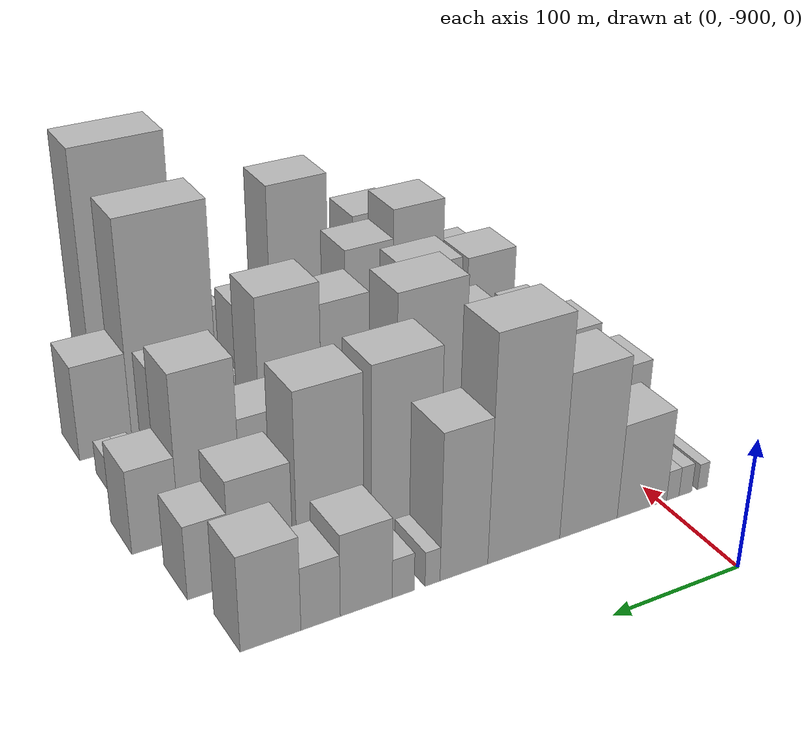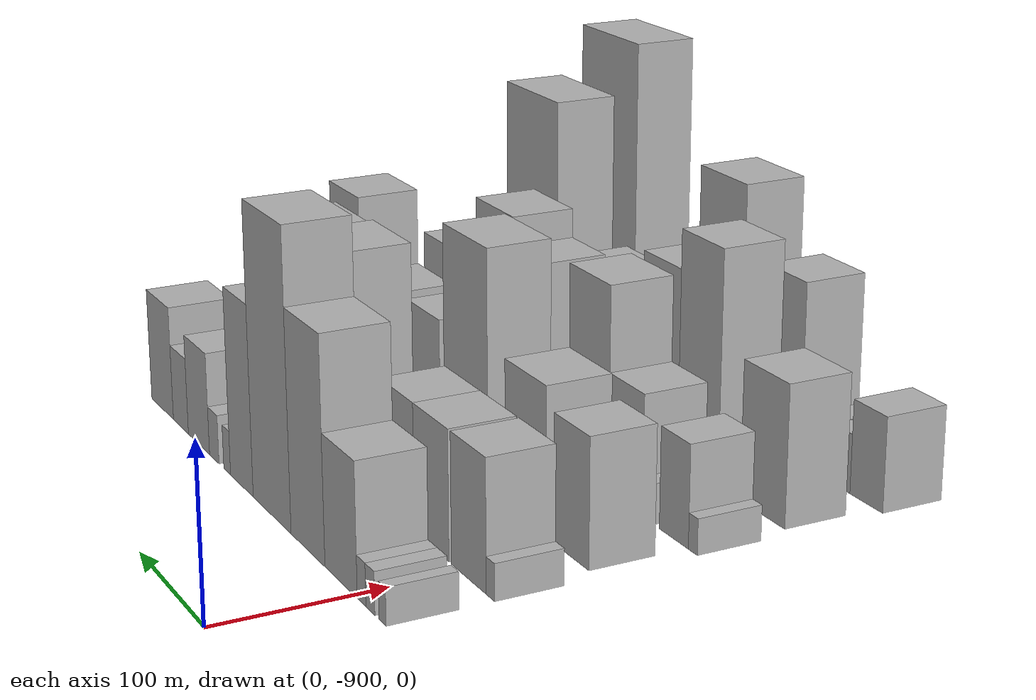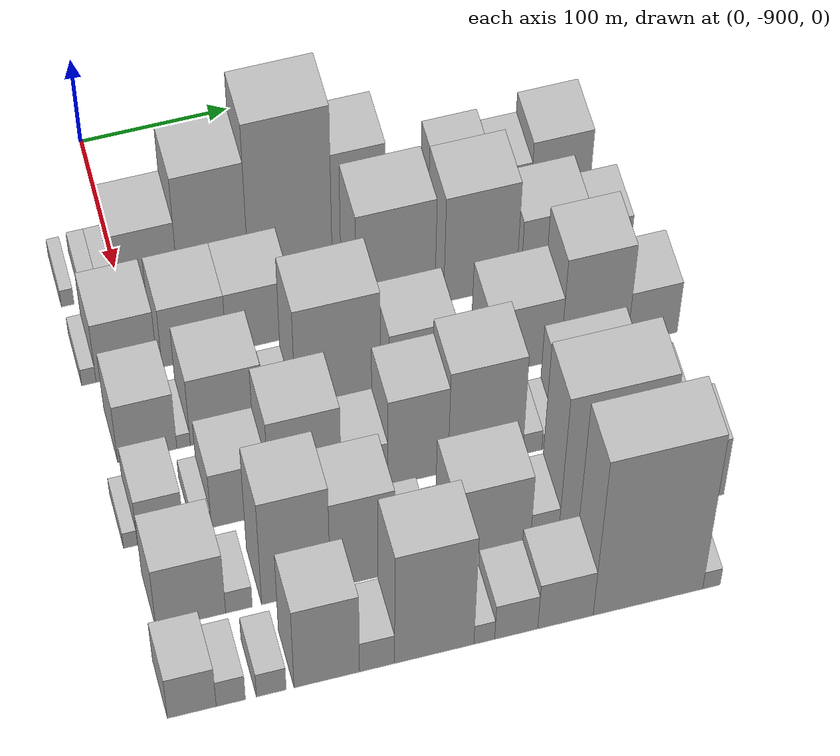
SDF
<sdf version="1.6">
 <world name="default">
  <model name="building_1">
   <static>1</static>
   <pose>100.0000 -935.7430 0 0.000000 0.000000 0.000000</pose>
   <link name="link">
    <pose>0 0 10.50 0 0 0</pose>
    <collision name="collision"><geometry><box><size>40.0000 8.5141 21.0000</size></box></geometry></collision>
    <visual name="visual">
     <cast_shadows>0</cast_shadows>
     <geometry><box><size>40.0000 8.5141 21.0000</size></box></geometry>
     <material>
      <script>
       <uri>model://HANNAS_wall/materials/scripts</uri>
       <uri>model://HANNAS_wall/materials/textures</uri>
       <name>vrc/HANNAS_wall</name>
      </script>
     </material>
    </visual>
   </link>
  </model>
  <model name="building_2">
   <static>1</static>
   <pose>100.0000 -920.8416 0 0.000000 0.000000 0.000000</pose>
   <link name="link">
    <pose>0 0 12.00 0 0 0</pose>
    <collision name="collision"><geometry><box><size>40.0000 11.2887 24.0000</size></box></geometry></collision>
    <visual name="visual">
     <cast_shadows>0</cast_shadows>
     <geometry><box><size>40.0000 11.2887 24.0000</size></box></geometry>
     <material>
      <script>
       <uri>model://HANNAS_wall/materials/scripts</uri>
       <uri>model://HANNAS_wall/materials/textures</uri>
       <name>vrc/HANNAS_wall</name>
      </script>
     </material>
    </visual>
   </link>
  </model>
  <model name="building_3">
   <static>1</static>
   <pose>100.0000 -909.7827 0 0.000000 0.000000 0.000000</pose>
   <link name="link">
    <pose>0 0 12.00 0 0 0</pose>
    <collision name="collision"><geometry><box><size>40.0000 10.8289 24.0000</size></box></geometry></collision>
    <visual name="visual">
     <cast_shadows>0</cast_shadows>
     <geometry><box><size>40.0000 10.8289 24.0000</size></box></geometry>
     <material>
      <script>
       <uri>model://HANNAS_wall/materials/scripts</uri>
       <uri>model://HANNAS_wall/materials/textures</uri>
       <name>vrc/HANNAS_wall</name>
      </script>
     </material>
    </visual>
   </link>
  </model>
  <model name="building_4">
   <static>1</static>
   <pose>100.0000 -883.2671 0 0.000000 0.000000 0.000000</pose>
   <link name="link">
    <pose>0 0 37.50 0 0 0</pose>
    <collision name="collision"><geometry><box><size>40.0000 42.2023 75.0000</size></box></geometry></collision>
    <visual name="visual">
     <cast_shadows>0</cast_shadows>
     <geometry><box><size>40.0000 42.2023 75.0000</size></box></geometry>
     <material>
      <script>
       <uri>model://HANNAS_wall/materials/scripts</uri>
       <uri>model://HANNAS_wall/materials/textures</uri>
       <name>vrc/HANNAS_wall</name>
      </script>
     </material>
    </visual>
   </link>
  </model>
  <model name="building_5">
   <static>1</static>
   <pose>100.0000 -838.5047 0 0.000000 0.000000 0.000000</pose>
   <link name="link">
    <pose>0 0 64.50 0 0 0</pose>
    <collision name="collision"><geometry><box><size>40.0000 47.3226 129.0000</size></box></geometry></collision>
    <visual name="visual">
     <cast_shadows>0</cast_shadows>
     <geometry><box><size>40.0000 47.3226 129.0000</size></box></geometry>
     <material>
      <script>
       <uri>model://HANNAS_wall/materials/scripts</uri>
       <uri>model://HANNAS_wall/materials/textures</uri>
       <name>vrc/HANNAS_wall</name>
      </script>
     </material>
    </visual>
   </link>
  </model>
  <model name="building_6">
   <static>1</static>
   <pose>100.0000 -786.4899 0 0.000000 0.000000 0.000000</pose>
   <link name="link">
    <pose>0 0 87.00 0 0 0</pose>
    <collision name="collision"><geometry><box><size>40.0000 56.7071 174.0000</size></box></geometry></collision>
    <visual name="visual">
     <cast_shadows>0</cast_shadows>
     <geometry><box><size>40.0000 56.7071 174.0000</size></box></geometry>
     <material>
      <script>
       <uri>model://HANNAS_wall/materials/scripts</uri>
       <uri>model://HANNAS_wall/materials/textures</uri>
       <name>vrc/HANNAS_wall</name>
      </script>
     </material>
    </visual>
   </link>
  </model>
  <model name="building_7">
   <static>1</static>
   <pose>100.0000 -740.0152 0 0.000000 0.000000 0.000000</pose>
   <link name="link">
    <pose>0 0 57.00 0 0 0</pose>
    <collision name="collision"><geometry><box><size>40.0000 36.2424 114.0000</size></box></geometry></collision>
    <visual name="visual">
     <cast_shadows>0</cast_shadows>
     <geometry><box><size>40.0000 36.2424 114.0000</size></box></geometry>
     <material>
      <script>
       <uri>model://HANNAS_wall/materials/scripts</uri>
       <uri>model://HANNAS_wall/materials/textures</uri>
       <name>vrc/HANNAS_wall</name>
      </script>
     </material>
    </visual>
   </link>
  </model>
  <model name="building_8">
   <static>1</static>
   <pose>100.0000 -716.3524 0 0.000000 0.000000 0.000000</pose>
   <link name="link">
    <pose>0 0 13.50 0 0 0</pose>
    <collision name="collision"><geometry><box><size>40.0000 11.0833 27.0000</size></box></geometry></collision>
    <visual name="visual">
     <cast_shadows>0</cast_shadows>
     <geometry><box><size>40.0000 11.0833 27.0000</size></box></geometry>
     <material>
      <script>
       <uri>model://HANNAS_wall/materials/scripts</uri>
       <uri>model://HANNAS_wall/materials/textures</uri>
       <name>vrc/HANNAS_wall</name>
      </script>
     </material>
    </visual>
   </link>
  </model>
  <model name="building_9">
   <static>1</static>
   <pose>100.0000 -694.8102 0 0.000000 0.000000 0.000000</pose>
   <link name="link">
    <pose>0 0 15.00 0 0 0</pose>
    <collision name="collision"><geometry><box><size>40.0000 16.0010 30.0000</size></box></geometry></collision>
    <visual name="visual">
     <cast_shadows>0</cast_shadows>
     <geometry><box><size>40.0000 16.0010 30.0000</size></box></geometry>
     <material>
      <script>
       <uri>model://HANNAS_wall/materials/scripts</uri>
       <uri>model://HANNAS_wall/materials/textures</uri>
       <name>vrc/HANNAS_wall</name>
      </script>
     </material>
    </visual>
   </link>
  </model>
  <model name="building_10">
   <static>1</static>
   <pose>100.0000 -668.3069 0 0.000000 0.000000 0.000000</pose>
   <link name="link">
    <pose>0 0 31.50 0 0 0</pose>
    <collision name="collision"><geometry><box><size>40.0000 37.0057 63.0000</size></box></geometry></collision>
    <visual name="visual">
     <cast_shadows>0</cast_shadows>
     <geometry><box><size>40.0000 37.0057 63.0000</size></box></geometry>
     <material>
      <script>
       <uri>model://HANNAS_wall/materials/scripts</uri>
       <uri>model://HANNAS_wall/materials/textures</uri>
       <name>vrc/HANNAS_wall</name>
      </script>
     </material>
    </visual>
   </link>
  </model>
  <model name="building_11">
   <static>1</static>
   <pose>100.0000 -636.1477 0 0.000000 0.000000 0.000000</pose>
   <link name="link">
    <pose>0 0 24.00 0 0 0</pose>
    <collision name="collision"><geometry><box><size>40.0000 27.3127 48.0000</size></box></geometry></collision>
    <visual name="visual">
     <cast_shadows>0</cast_shadows>
     <geometry><box><size>40.0000 27.3127 48.0000</size></box></geometry>
     <material>
      <script>
       <uri>model://HANNAS_wall/materials/scripts</uri>
       <uri>model://HANNAS_wall/materials/textures</uri>
       <name>vrc/HANNAS_wall</name>
      </script>
     </material>
    </visual>
   </link>
  </model>
  <model name="building_12">
   <static>1</static>
   <pose>100.0000 -602.0599 0 0.000000 0.000000 0.000000</pose>
   <link name="link">
    <pose>0 0 36.00 0 0 0</pose>
    <collision name="collision"><geometry><box><size>40.0000 40.8630 72.0000</size></box></geometry></collision>
    <visual name="visual">
     <cast_shadows>0</cast_shadows>
     <geometry><box><size>40.0000 40.8630 72.0000</size></box></geometry>
     <material>
      <script>
       <uri>model://HANNAS_wall/materials/scripts</uri>
       <uri>model://HANNAS_wall/materials/textures</uri>
       <name>vrc/HANNAS_wall</name>
      </script>
     </material>
    </visual>
   </link>
  </model>
  <model name="building_56">
   <static>1</static>
   <pose>160.0000 -935.2326 0 0.000000 0.000000 0.000000</pose>
   <link name="link">
    <pose>0 0 10.50 0 0 0</pose>
    <collision name="collision"><geometry><box><size>40.0000 9.5348 21.0000</size></box></geometry></collision>
    <visual name="visual">
     <cast_shadows>0</cast_shadows>
     <geometry><box><size>40.0000 9.5348 21.0000</size></box></geometry>
     <material>
      <script>
       <uri>model://HANNAS_wall/materials/scripts</uri>
       <uri>model://HANNAS_wall/materials/textures</uri>
       <name>vrc/HANNAS_wall</name>
      </script>
     </material>
    </visual>
   </link>
  </model>
  <model name="building_57">
   <static>1</static>
   <pose>160.0000 -910.1573 0 0.000000 0.000000 0.000000</pose>
   <link name="link">
    <pose>0 0 37.50 0 0 0</pose>
    <collision name="collision"><geometry><box><size>40.0000 40.6156 75.0000</size></box></geometry></collision>
    <visual name="visual">
     <cast_shadows>0</cast_shadows>
     <geometry><box><size>40.0000 40.6156 75.0000</size></box></geometry>
     <material>
      <script>
       <uri>model://HANNAS_wall/materials/scripts</uri>
       <uri>model://HANNAS_wall/materials/textures</uri>
       <name>vrc/HANNAS_wall</name>
      </script>
     </material>
    </visual>
   </link>
  </model>
  <model name="building_58">
   <static>1</static>
   <pose>160.0000 -865.3514 0 0.000000 0.000000 0.000000</pose>
   <link name="link">
    <pose>0 0 37.50 0 0 0</pose>
    <collision name="collision"><geometry><box><size>40.0000 42.9962 75.0000</size></box></geometry></collision>
    <visual name="visual">
     <cast_shadows>0</cast_shadows>
     <geometry><box><size>40.0000 42.9962 75.0000</size></box></geometry>
     <material>
      <script>
       <uri>model://HANNAS_wall/materials/scripts</uri>
       <uri>model://HANNAS_wall/materials/textures</uri>
       <name>vrc/HANNAS_wall</name>
      </script>
     </material>
    </visual>
   </link>
  </model>
  <model name="building_59">
   <static>1</static>
   <pose>160.0000 -821.9235 0 0.000000 0.000000 0.000000</pose>
   <link name="link">
    <pose>0 0 37.50 0 0 0</pose>
    <collision name="collision"><geometry><box><size>40.0000 43.8597 75.0000</size></box></geometry></collision>
    <visual name="visual">
     <cast_shadows>0</cast_shadows>
     <geometry><box><size>40.0000 43.8597 75.0000</size></box></geometry>
     <material>
      <script>
       <uri>model://HANNAS_wall/materials/scripts</uri>
       <uri>model://HANNAS_wall/materials/textures</uri>
       <name>vrc/HANNAS_wall</name>
      </script>
     </material>
    </visual>
   </link>
  </model>
  <model name="building_60">
   <static>1</static>
   <pose>160.0000 -786.2253 0 0.000000 0.000000 0.000000</pose>
   <link name="link">
    <pose>0 0 12.00 0 0 0</pose>
    <collision name="collision"><geometry><box><size>40.0000 11.5367 24.0000</size></box></geometry></collision>
    <visual name="visual">
     <cast_shadows>0</cast_shadows>
     <geometry><box><size>40.0000 11.5367 24.0000</size></box></geometry>
     <material>
      <script>
       <uri>model://HANNAS_wall/materials/scripts</uri>
       <uri>model://HANNAS_wall/materials/textures</uri>
       <name>vrc/HANNAS_wall</name>
      </script>
     </material>
    </visual>
   </link>
  </model>
  <model name="building_61">
   <static>1</static>
   <pose>160.0000 -770.8223 0 0.000000 0.000000 0.000000</pose>
   <link name="link">
    <pose>0 0 10.50 0 0 0</pose>
    <collision name="collision"><geometry><box><size>40.0000 9.2693 21.0000</size></box></geometry></collision>
    <visual name="visual">
     <cast_shadows>0</cast_shadows>
     <geometry><box><size>40.0000 9.2693 21.0000</size></box></geometry>
     <material>
      <script>
       <uri>model://HANNAS_wall/materials/scripts</uri>
       <uri>model://HANNAS_wall/materials/textures</uri>
       <name>vrc/HANNAS_wall</name>
      </script>
     </material>
    </visual>
   </link>
  </model>
  <model name="building_62">
   <static>1</static>
   <pose>160.0000 -730.7916 0 0.000000 0.000000 0.000000</pose>
   <link name="link">
    <pose>0 0 67.50 0 0 0</pose>
    <collision name="collision"><geometry><box><size>40.0000 52.7921 135.0000</size></box></geometry></collision>
    <visual name="visual">
     <cast_shadows>0</cast_shadows>
     <geometry><box><size>40.0000 52.7921 135.0000</size></box></geometry>
     <material>
      <script>
       <uri>model://HANNAS_wall/materials/scripts</uri>
       <uri>model://HANNAS_wall/materials/textures</uri>
       <name>vrc/HANNAS_wall</name>
      </script>
     </material>
    </visual>
   </link>
  </model>
  <model name="building_63">
   <static>1</static>
   <pose>160.0000 -673.8231 0 0.000000 0.000000 0.000000</pose>
   <link name="link">
    <pose>0 0 66.00 0 0 0</pose>
    <collision name="collision"><geometry><box><size>40.0000 49.1448 132.0000</size></box></geometry></collision>
    <visual name="visual">
     <cast_shadows>0</cast_shadows>
     <geometry><box><size>40.0000 49.1448 132.0000</size></box></geometry>
     <material>
      <script>
       <uri>model://HANNAS_wall/materials/scripts</uri>
       <uri>model://HANNAS_wall/materials/textures</uri>
       <name>vrc/HANNAS_wall</name>
      </script>
     </material>
    </visual>
   </link>
  </model>
  <model name="building_64">
   <static>1</static>
   <pose>160.0000 -623.9301 0 0.000000 0.000000 0.000000</pose>
   <link name="link">
    <pose>0 0 40.50 0 0 0</pose>
    <collision name="collision"><geometry><box><size>40.0000 44.6413 81.0000</size></box></geometry></collision>
    <visual name="visual">
     <cast_shadows>0</cast_shadows>
     <geometry><box><size>40.0000 44.6413 81.0000</size></box></geometry>
     <material>
      <script>
       <uri>model://HANNAS_wall/materials/scripts</uri>
       <uri>model://HANNAS_wall/materials/textures</uri>
       <name>vrc/HANNAS_wall</name>
      </script>
     </material>
    </visual>
   </link>
  </model>
  <model name="building_65">
   <static>1</static>
   <pose>160.0000 -586.8522 0 0.000000 0.000000 0.000000</pose>
   <link name="link">
    <pose>0 0 28.50 0 0 0</pose>
    <collision name="collision"><geometry><box><size>40.0000 29.5145 57.0000</size></box></geometry></collision>
    <visual name="visual">
     <cast_shadows>0</cast_shadows>
     <geometry><box><size>40.0000 29.5145 57.0000</size></box></geometry>
     <material>
      <script>
       <uri>model://HANNAS_wall/materials/scripts</uri>
       <uri>model://HANNAS_wall/materials/textures</uri>
       <name>vrc/HANNAS_wall</name>
      </script>
     </material>
    </visual>
   </link>
  </model>
  <model name="building_112">
   <static>1</static>
   <pose>220.0000 -910.6092 0 0.000000 0.000000 0.000000</pose>
   <link name="link">
    <pose>0 0 37.50 0 0 0</pose>
    <collision name="collision"><geometry><box><size>40.0000 38.7816 75.0000</size></box></geometry></collision>
    <visual name="visual">
     <cast_shadows>0</cast_shadows>
     <geometry><box><size>40.0000 38.7816 75.0000</size></box></geometry>
     <material>
      <script>
       <uri>model://HANNAS_wall/materials/scripts</uri>
       <uri>model://HANNAS_wall/materials/textures</uri>
       <name>vrc/HANNAS_wall</name>
      </script>
     </material>
    </visual>
   </link>
  </model>
  <model name="building_113">
   <static>1</static>
   <pose>220.0000 -886.7845 0 0.000000 0.000000 0.000000</pose>
   <link name="link">
    <pose>0 0 9.00 0 0 0</pose>
    <collision name="collision"><geometry><box><size>40.0000 8.8679 18.0000</size></box></geometry></collision>
    <visual name="visual">
     <cast_shadows>0</cast_shadows>
     <geometry><box><size>40.0000 8.8679 18.0000</size></box></geometry>
     <material>
      <script>
       <uri>model://HANNAS_wall/materials/scripts</uri>
       <uri>model://HANNAS_wall/materials/textures</uri>
       <name>vrc/HANNAS_wall</name>
      </script>
     </material>
    </visual>
   </link>
  </model>
  <model name="building_114">
   <static>1</static>
   <pose>220.0000 -858.3173 0 0.000000 0.000000 0.000000</pose>
   <link name="link">
    <pose>0 0 43.50 0 0 0</pose>
    <collision name="collision"><geometry><box><size>40.0000 48.0666 87.0000</size></box></geometry></collision>
    <visual name="visual">
     <cast_shadows>0</cast_shadows>
     <geometry><box><size>40.0000 48.0666 87.0000</size></box></geometry>
     <material>
      <script>
       <uri>model://HANNAS_wall/materials/scripts</uri>
       <uri>model://HANNAS_wall/materials/textures</uri>
       <name>vrc/HANNAS_wall</name>
      </script>
     </material>
    </visual>
   </link>
  </model>
  <model name="building_115">
   <static>1</static>
   <pose>220.0000 -820.5528 0 0.000000 0.000000 0.000000</pose>
   <link name="link">
    <pose>0 0 15.00 0 0 0</pose>
    <collision name="collision"><geometry><box><size>40.0000 15.4623 30.0000</size></box></geometry></collision>
    <visual name="visual">
     <cast_shadows>0</cast_shadows>
     <geometry><box><size>40.0000 15.4623 30.0000</size></box></geometry>
     <material>
      <script>
       <uri>model://HANNAS_wall/materials/scripts</uri>
       <uri>model://HANNAS_wall/materials/textures</uri>
       <name>vrc/HANNAS_wall</name>
      </script>
     </material>
    </visual>
   </link>
  </model>
  <model name="building_116">
   <static>1</static>
   <pose>220.0000 -784.8689 0 0.000000 0.000000 0.000000</pose>
   <link name="link">
    <pose>0 0 72.00 0 0 0</pose>
    <collision name="collision"><geometry><box><size>40.0000 55.9054 144.0000</size></box></geometry></collision>
    <visual name="visual">
     <cast_shadows>0</cast_shadows>
     <geometry><box><size>40.0000 55.9054 144.0000</size></box></geometry>
     <material>
      <script>
       <uri>model://HANNAS_wall/materials/scripts</uri>
       <uri>model://HANNAS_wall/materials/textures</uri>
       <name>vrc/HANNAS_wall</name>
      </script>
     </material>
    </visual>
   </link>
  </model>
  <model name="building_117">
   <static>1</static>
   <pose>220.0000 -728.7462 0 0.000000 0.000000 0.000000</pose>
   <link name="link">
    <pose>0 0 42.00 0 0 0</pose>
    <collision name="collision"><geometry><box><size>40.0000 44.3400 84.0000</size></box></geometry></collision>
    <visual name="visual">
     <cast_shadows>0</cast_shadows>
     <geometry><box><size>40.0000 44.3400 84.0000</size></box></geometry>
     <material>
      <script>
       <uri>model://HANNAS_wall/materials/scripts</uri>
       <uri>model://HANNAS_wall/materials/textures</uri>
       <name>vrc/HANNAS_wall</name>
      </script>
     </material>
    </visual>
   </link>
  </model>
  <model name="building_118">
   <static>1</static>
   <pose>220.0000 -701.6937 0 0.000000 0.000000 0.000000</pose>
   <link name="link">
    <pose>0 0 12.00 0 0 0</pose>
    <collision name="collision"><geometry><box><size>40.0000 9.7652 24.0000</size></box></geometry></collision>
    <visual name="visual">
     <cast_shadows>0</cast_shadows>
     <geometry><box><size>40.0000 9.7652 24.0000</size></box></geometry>
     <material>
      <script>
       <uri>model://HANNAS_wall/materials/scripts</uri>
       <uri>model://HANNAS_wall/materials/textures</uri>
       <name>vrc/HANNAS_wall</name>
      </script>
     </material>
    </visual>
   </link>
  </model>
  <model name="building_119">
   <static>1</static>
   <pose>220.0000 -693.3369 0 0.000000 0.000000 0.000000</pose>
   <link name="link">
    <pose>0 0 7.50 0 0 0</pose>
    <collision name="collision"><geometry><box><size>40.0000 6.9484 15.0000</size></box></geometry></collision>
    <visual name="visual">
     <cast_shadows>0</cast_shadows>
     <geometry><box><size>40.0000 6.9484 15.0000</size></box></geometry>
     <material>
      <script>
       <uri>model://HANNAS_wall/materials/scripts</uri>
       <uri>model://HANNAS_wall/materials/textures</uri>
       <name>vrc/HANNAS_wall</name>
      </script>
     </material>
    </visual>
   </link>
  </model>
  <model name="building_120">
   <static>1</static>
   <pose>220.0000 -660.5978 0 0.000000 0.000000 0.000000</pose>
   <link name="link">
    <pose>0 0 40.50 0 0 0</pose>
    <collision name="collision"><geometry><box><size>40.0000 48.5297 81.0000</size></box></geometry></collision>
    <visual name="visual">
     <cast_shadows>0</cast_shadows>
     <geometry><box><size>40.0000 48.5297 81.0000</size></box></geometry>
     <material>
      <script>
       <uri>model://HANNAS_wall/materials/scripts</uri>
       <uri>model://HANNAS_wall/materials/textures</uri>
       <name>vrc/HANNAS_wall</name>
      </script>
     </material>
    </visual>
   </link>
  </model>
  <model name="building_121">
   <static>1</static>
   <pose>220.0000 -613.8296 0 0.000000 0.000000 0.000000</pose>
   <link name="link">
    <pose>0 0 64.50 0 0 0</pose>
    <collision name="collision"><geometry><box><size>40.0000 45.0068 129.0000</size></box></geometry></collision>
    <visual name="visual">
     <cast_shadows>0</cast_shadows>
     <geometry><box><size>40.0000 45.0068 129.0000</size></box></geometry>
     <material>
      <script>
       <uri>model://HANNAS_wall/materials/scripts</uri>
       <uri>model://HANNAS_wall/materials/textures</uri>
       <name>vrc/HANNAS_wall</name>
      </script>
     </material>
    </visual>
   </link>
  </model>
  <model name="building_122">
   <static>1</static>
   <pose>220.0000 -574.4272 0 0.000000 0.000000 0.000000</pose>
   <link name="link">
    <pose>0 0 33.00 0 0 0</pose>
    <collision name="collision"><geometry><box><size>40.0000 33.7979 66.0000</size></box></geometry></collision>
    <visual name="visual">
     <cast_shadows>0</cast_shadows>
     <geometry><box><size>40.0000 33.7979 66.0000</size></box></geometry>
     <material>
      <script>
       <uri>model://HANNAS_wall/materials/scripts</uri>
       <uri>model://HANNAS_wall/materials/textures</uri>
       <name>vrc/HANNAS_wall</name>
      </script>
     </material>
    </visual>
   </link>
  </model>
  <model name="building_168">
   <static>1</static>
   <pose>280.0000 -935.4823 0 0.000000 0.000000 0.000000</pose>
   <link name="link">
    <pose>0 0 10.50 0 0 0</pose>
    <collision name="collision"><geometry><box><size>40.0000 9.0355 21.0000</size></box></geometry></collision>
    <visual name="visual">
     <cast_shadows>0</cast_shadows>
     <geometry><box><size>40.0000 9.0355 21.0000</size></box></geometry>
     <material>
      <script>
       <uri>model://HANNAS_wall/materials/scripts</uri>
       <uri>model://HANNAS_wall/materials/textures</uri>
       <name>vrc/HANNAS_wall</name>
      </script>
     </material>
    </visual>
   </link>
  </model>
  <model name="building_169">
   <static>1</static>
   <pose>280.0000 -915.9203 0 0.000000 0.000000 0.000000</pose>
   <link name="link">
    <pose>0 0 30.00 0 0 0</pose>
    <collision name="collision"><geometry><box><size>40.0000 30.0885 60.0000</size></box></geometry></collision>
    <visual name="visual">
     <cast_shadows>0</cast_shadows>
     <geometry><box><size>40.0000 30.0885 60.0000</size></box></geometry>
     <material>
      <script>
       <uri>model://HANNAS_wall/materials/scripts</uri>
       <uri>model://HANNAS_wall/materials/textures</uri>
       <name>vrc/HANNAS_wall</name>
      </script>
     </material>
    </visual>
   </link>
  </model>
  <model name="building_170">
   <static>1</static>
   <pose>280.0000 -888.9317 0 0.000000 0.000000 0.000000</pose>
   <link name="link">
    <pose>0 0 12.00 0 0 0</pose>
    <collision name="collision"><geometry><box><size>40.0000 11.8885 24.0000</size></box></geometry></collision>
    <visual name="visual">
     <cast_shadows>0</cast_shadows>
     <geometry><box><size>40.0000 11.8885 24.0000</size></box></geometry>
     <material>
      <script>
       <uri>model://HANNAS_wall/materials/scripts</uri>
       <uri>model://HANNAS_wall/materials/textures</uri>
       <name>vrc/HANNAS_wall</name>
      </script>
     </material>
    </visual>
   </link>
  </model>
  <model name="building_171">
   <static>1</static>
   <pose>280.0000 -864.0076 0 0.000000 0.000000 0.000000</pose>
   <link name="link">
    <pose>0 0 36.00 0 0 0</pose>
    <collision name="collision"><geometry><box><size>40.0000 37.9596 72.0000</size></box></geometry></collision>
    <visual name="visual">
     <cast_shadows>0</cast_shadows>
     <geometry><box><size>40.0000 37.9596 72.0000</size></box></geometry>
     <material>
      <script>
       <uri>model://HANNAS_wall/materials/scripts</uri>
       <uri>model://HANNAS_wall/materials/textures</uri>
       <name>vrc/HANNAS_wall</name>
      </script>
     </material>
    </visual>
   </link>
  </model>
  <model name="building_172">
   <static>1</static>
   <pose>280.0000 -821.5757 0 0.000000 0.000000 0.000000</pose>
   <link name="link">
    <pose>0 0 61.50 0 0 0</pose>
    <collision name="collision"><geometry><box><size>40.0000 46.9043 123.0000</size></box></geometry></collision>
    <visual name="visual">
     <cast_shadows>0</cast_shadows>
     <geometry><box><size>40.0000 46.9043 123.0000</size></box></geometry>
     <material>
      <script>
       <uri>model://HANNAS_wall/materials/scripts</uri>
       <uri>model://HANNAS_wall/materials/textures</uri>
       <name>vrc/HANNAS_wall</name>
      </script>
     </material>
    </visual>
   </link>
  </model>
  <model name="building_173">
   <static>1</static>
   <pose>280.0000 -782.9356 0 0.000000 0.000000 0.000000</pose>
   <link name="link">
    <pose>0 0 30.00 0 0 0</pose>
    <collision name="collision"><geometry><box><size>40.0000 30.3758 60.0000</size></box></geometry></collision>
    <visual name="visual">
     <cast_shadows>0</cast_shadows>
     <geometry><box><size>40.0000 30.3758 60.0000</size></box></geometry>
     <material>
      <script>
       <uri>model://HANNAS_wall/materials/scripts</uri>
       <uri>model://HANNAS_wall/materials/textures</uri>
       <name>vrc/HANNAS_wall</name>
      </script>
     </material>
    </visual>
   </link>
  </model>
  <model name="building_174">
   <static>1</static>
   <pose>280.0000 -747.9070 0 0.000000 0.000000 0.000000</pose>
   <link name="link">
    <pose>0 0 57.00 0 0 0</pose>
    <collision name="collision"><geometry><box><size>40.0000 39.6814 114.0000</size></box></geometry></collision>
    <visual name="visual">
     <cast_shadows>0</cast_shadows>
     <geometry><box><size>40.0000 39.6814 114.0000</size></box></geometry>
     <material>
      <script>
       <uri>model://HANNAS_wall/materials/scripts</uri>
       <uri>model://HANNAS_wall/materials/textures</uri>
       <name>vrc/HANNAS_wall</name>
      </script>
     </material>
    </visual>
   </link>
  </model>
  <model name="building_175">
   <static>1</static>
   <pose>280.0000 -703.3502 0 0.000000 0.000000 0.000000</pose>
   <link name="link">
    <pose>0 0 66.00 0 0 0</pose>
    <collision name="collision"><geometry><box><size>40.0000 49.4321 132.0000</size></box></geometry></collision>
    <visual name="visual">
     <cast_shadows>0</cast_shadows>
     <geometry><box><size>40.0000 49.4321 132.0000</size></box></geometry>
     <material>
      <script>
       <uri>model://HANNAS_wall/materials/scripts</uri>
       <uri>model://HANNAS_wall/materials/textures</uri>
       <name>vrc/HANNAS_wall</name>
      </script>
     </material>
    </visual>
   </link>
  </model>
  <model name="building_176">
   <static>1</static>
   <pose>280.0000 -672.2558 0 0.000000 0.000000 0.000000</pose>
   <link name="link">
    <pose>0 0 13.50 0 0 0</pose>
    <collision name="collision"><geometry><box><size>40.0000 12.7568 27.0000</size></box></geometry></collision>
    <visual name="visual">
     <cast_shadows>0</cast_shadows>
     <geometry><box><size>40.0000 12.7568 27.0000</size></box></geometry>
     <material>
      <script>
       <uri>model://HANNAS_wall/materials/scripts</uri>
       <uri>model://HANNAS_wall/materials/textures</uri>
       <name>vrc/HANNAS_wall</name>
      </script>
     </material>
    </visual>
   </link>
  </model>
  <model name="building_177">
   <static>1</static>
   <pose>280.0000 -660.8832 0 0.000000 0.000000 0.000000</pose>
   <link name="link">
    <pose>0 0 10.50 0 0 0</pose>
    <collision name="collision"><geometry><box><size>40.0000 9.9884 21.0000</size></box></geometry></collision>
    <visual name="visual">
     <cast_shadows>0</cast_shadows>
     <geometry><box><size>40.0000 9.9884 21.0000</size></box></geometry>
     <material>
      <script>
       <uri>model://HANNAS_wall/materials/scripts</uri>
       <uri>model://HANNAS_wall/materials/textures</uri>
       <name>vrc/HANNAS_wall</name>
      </script>
     </material>
    </visual>
   </link>
  </model>
  <model name="building_178">
   <static>1</static>
   <pose>280.0000 -629.3214 0 0.000000 0.000000 0.000000</pose>
   <link name="link">
    <pose>0 0 45.00 0 0 0</pose>
    <collision name="collision"><geometry><box><size>40.0000 53.1353 90.0000</size></box></geometry></collision>
    <visual name="visual">
     <cast_shadows>0</cast_shadows>
     <geometry><box><size>40.0000 53.1353 90.0000</size></box></geometry>
     <material>
      <script>
       <uri>model://HANNAS_wall/materials/scripts</uri>
       <uri>model://HANNAS_wall/materials/textures</uri>
       <name>vrc/HANNAS_wall</name>
      </script>
     </material>
    </visual>
   </link>
  </model>
  <model name="building_179">
   <static>1</static>
   <pose>280.0000 -586.7234 0 0.000000 0.000000 0.000000</pose>
   <link name="link">
    <pose>0 0 13.50 0 0 0</pose>
    <collision name="collision"><geometry><box><size>40.0000 12.0607 27.0000</size></box></geometry></collision>
    <visual name="visual">
     <cast_shadows>0</cast_shadows>
     <geometry><box><size>40.0000 12.0607 27.0000</size></box></geometry>
     <material>
      <script>
       <uri>model://HANNAS_wall/materials/scripts</uri>
       <uri>model://HANNAS_wall/materials/textures</uri>
       <name>vrc/HANNAS_wall</name>
      </script>
     </material>
    </visual>
   </link>
  </model>
  <model name="building_180">
   <static>1</static>
   <pose>280.0000 -574.4092 0 0.000000 0.000000 0.000000</pose>
   <link name="link">
    <pose>0 0 13.50 0 0 0</pose>
    <collision name="collision"><geometry><box><size>40.0000 12.5677 27.0000</size></box></geometry></collision>
    <visual name="visual">
     <cast_shadows>0</cast_shadows>
     <geometry><box><size>40.0000 12.5677 27.0000</size></box></geometry>
     <material>
      <script>
       <uri>model://HANNAS_wall/materials/scripts</uri>
       <uri>model://HANNAS_wall/materials/textures</uri>
       <name>vrc/HANNAS_wall</name>
      </script>
     </material>
    </visual>
   </link>
  </model>
  <model name="building_223">
   <static>1</static>
   <pose>340.0000 -910.6754 0 0.000000 0.000000 0.000000</pose>
   <link name="link">
    <pose>0 0 42.00 0 0 0</pose>
    <collision name="collision"><geometry><box><size>40.0000 44.6493 84.0000</size></box></geometry></collision>
    <visual name="visual">
     <cast_shadows>0</cast_shadows>
     <geometry><box><size>40.0000 44.6493 84.0000</size></box></geometry>
     <material>
      <script>
       <uri>model://HANNAS_wall/materials/scripts</uri>
       <uri>model://HANNAS_wall/materials/textures</uri>
       <name>vrc/HANNAS_wall</name>
      </script>
     </material>
    </visual>
   </link>
  </model>
  <model name="building_224">
   <static>1</static>
   <pose>340.0000 -879.7506 0 0.000000 0.000000 0.000000</pose>
   <link name="link">
    <pose>0 0 15.00 0 0 0</pose>
    <collision name="collision"><geometry><box><size>40.0000 17.2002 30.0000</size></box></geometry></collision>
    <visual name="visual">
     <cast_shadows>0</cast_shadows>
     <geometry><box><size>40.0000 17.2002 30.0000</size></box></geometry>
     <material>
      <script>
       <uri>model://HANNAS_wall/materials/scripts</uri>
       <uri>model://HANNAS_wall/materials/textures</uri>
       <name>vrc/HANNAS_wall</name>
      </script>
     </material>
    </visual>
   </link>
  </model>
  <model name="building_225">
   <static>1</static>
   <pose>340.0000 -842.9800 0 0.000000 0.000000 0.000000</pose>
   <link name="link">
    <pose>0 0 70.50 0 0 0</pose>
    <collision name="collision"><geometry><box><size>40.0000 44.3410 141.0000</size></box></geometry></collision>
    <visual name="visual">
     <cast_shadows>0</cast_shadows>
     <geometry><box><size>40.0000 44.3410 141.0000</size></box></geometry>
     <material>
      <script>
       <uri>model://HANNAS_wall/materials/scripts</uri>
       <uri>model://HANNAS_wall/materials/textures</uri>
       <name>vrc/HANNAS_wall</name>
      </script>
     </material>
    </visual>
   </link>
  </model>
  <model name="building_226">
   <static>1</static>
   <pose>340.0000 -800.0558 0 0.000000 0.000000 0.000000</pose>
   <link name="link">
    <pose>0 0 58.50 0 0 0</pose>
    <collision name="collision"><geometry><box><size>40.0000 41.5075 117.0000</size></box></geometry></collision>
    <visual name="visual">
     <cast_shadows>0</cast_shadows>
     <geometry><box><size>40.0000 41.5075 117.0000</size></box></geometry>
     <material>
      <script>
       <uri>model://HANNAS_wall/materials/scripts</uri>
       <uri>model://HANNAS_wall/materials/textures</uri>
       <name>vrc/HANNAS_wall</name>
      </script>
     </material>
    </visual>
   </link>
  </model>
  <model name="building_227">
   <static>1</static>
   <pose>340.0000 -767.1377 0 0.000000 0.000000 0.000000</pose>
   <link name="link">
    <pose>0 0 22.50 0 0 0</pose>
    <collision name="collision"><geometry><box><size>40.0000 24.3286 45.0000</size></box></geometry></collision>
    <visual name="visual">
     <cast_shadows>0</cast_shadows>
     <geometry><box><size>40.0000 24.3286 45.0000</size></box></geometry>
     <material>
      <script>
       <uri>model://HANNAS_wall/materials/scripts</uri>
       <uri>model://HANNAS_wall/materials/textures</uri>
       <name>vrc/HANNAS_wall</name>
      </script>
     </material>
    </visual>
   </link>
  </model>
  <model name="building_228">
   <static>1</static>
   <pose>340.0000 -748.3158 0 0.000000 0.000000 0.000000</pose>
   <link name="link">
    <pose>0 0 13.50 0 0 0</pose>
    <collision name="collision"><geometry><box><size>40.0000 13.3153 27.0000</size></box></geometry></collision>
    <visual name="visual">
     <cast_shadows>0</cast_shadows>
     <geometry><box><size>40.0000 13.3153 27.0000</size></box></geometry>
     <material>
      <script>
       <uri>model://HANNAS_wall/materials/scripts</uri>
       <uri>model://HANNAS_wall/materials/textures</uri>
       <name>vrc/HANNAS_wall</name>
      </script>
     </material>
    </visual>
   </link>
  </model>
  <model name="building_229">
   <static>1</static>
   <pose>340.0000 -715.9794 0 0.000000 0.000000 0.000000</pose>
   <link name="link">
    <pose>0 0 45.00 0 0 0</pose>
    <collision name="collision"><geometry><box><size>40.0000 51.3574 90.0000</size></box></geometry></collision>
    <visual name="visual">
     <cast_shadows>0</cast_shadows>
     <geometry><box><size>40.0000 51.3574 90.0000</size></box></geometry>
     <material>
      <script>
       <uri>model://HANNAS_wall/materials/scripts</uri>
       <uri>model://HANNAS_wall/materials/textures</uri>
       <name>vrc/HANNAS_wall</name>
      </script>
     </material>
    </visual>
   </link>
  </model>
  <model name="building_230">
   <static>1</static>
   <pose>340.0000 -681.0900 0 0.000000 0.000000 0.000000</pose>
   <link name="link">
    <pose>0 0 18.00 0 0 0</pose>
    <collision name="collision"><geometry><box><size>40.0000 18.4214 36.0000</size></box></geometry></collision>
    <visual name="visual">
     <cast_shadows>0</cast_shadows>
     <geometry><box><size>40.0000 18.4214 36.0000</size></box></geometry>
     <material>
      <script>
       <uri>model://HANNAS_wall/materials/scripts</uri>
       <uri>model://HANNAS_wall/materials/textures</uri>
       <name>vrc/HANNAS_wall</name>
      </script>
     </material>
    </visual>
   </link>
  </model>
  <model name="building_231">
   <static>1</static>
   <pose>340.0000 -637.5356 0 0.000000 0.000000 0.000000</pose>
   <link name="link">
    <pose>0 0 91.50 0 0 0</pose>
    <collision name="collision"><geometry><box><size>40.0000 68.6874 183.0000</size></box></geometry></collision>
    <visual name="visual">
     <cast_shadows>0</cast_shadows>
     <geometry><box><size>40.0000 68.6874 183.0000</size></box></geometry>
     <material>
      <script>
       <uri>model://HANNAS_wall/materials/scripts</uri>
       <uri>model://HANNAS_wall/materials/textures</uri>
       <name>vrc/HANNAS_wall</name>
      </script>
     </material>
    </visual>
   </link>
  </model>
  <model name="building_232">
   <static>1</static>
   <pose>340.0000 -582.9753 0 0.000000 0.000000 0.000000</pose>
   <link name="link">
    <pose>0 0 39.00 0 0 0</pose>
    <collision name="collision"><geometry><box><size>40.0000 40.4332 78.0000</size></box></geometry></collision>
    <visual name="visual">
     <cast_shadows>0</cast_shadows>
     <geometry><box><size>40.0000 40.4332 78.0000</size></box></geometry>
     <material>
      <script>
       <uri>model://HANNAS_wall/materials/scripts</uri>
       <uri>model://HANNAS_wall/materials/textures</uri>
       <name>vrc/HANNAS_wall</name>
      </script>
     </material>
    </visual>
   </link>
  </model>
  <model name="building_279">
   <static>1</static>
   <pose>400.0000 -924.4854 0 0.000000 0.000000 0.000000</pose>
   <link name="link">
    <pose>0 0 28.50 0 0 0</pose>
    <collision name="collision"><geometry><box><size>40.0000 31.0293 57.0000</size></box></geometry></collision>
    <visual name="visual">
     <cast_shadows>0</cast_shadows>
     <geometry><box><size>40.0000 31.0293 57.0000</size></box></geometry>
     <material>
      <script>
       <uri>model://HANNAS_wall/materials/scripts</uri>
       <uri>model://HANNAS_wall/materials/textures</uri>
       <name>vrc/HANNAS_wall</name>
      </script>
     </material>
    </visual>
   </link>
  </model>
  <model name="building_280">
   <static>1</static>
   <pose>400.0000 -899.6874 0 0.000000 0.000000 0.000000</pose>
   <link name="link">
    <pose>0 0 18.00 0 0 0</pose>
    <collision name="collision"><geometry><box><size>40.0000 18.5666 36.0000</size></box></geometry></collision>
    <visual name="visual">
     <cast_shadows>0</cast_shadows>
     <geometry><box><size>40.0000 18.5666 36.0000</size></box></geometry>
     <material>
      <script>
       <uri>model://HANNAS_wall/materials/scripts</uri>
       <uri>model://HANNAS_wall/materials/textures</uri>
       <name>vrc/HANNAS_wall</name>
      </script>
     </material>
    </visual>
   </link>
  </model>
  <model name="building_281">
   <static>1</static>
   <pose>400.0000 -873.9093 0 0.000000 0.000000 0.000000</pose>
   <link name="link">
    <pose>0 0 16.50 0 0 0</pose>
    <collision name="collision"><geometry><box><size>40.0000 18.9897 33.0000</size></box></geometry></collision>
    <visual name="visual">
     <cast_shadows>0</cast_shadows>
     <geometry><box><size>40.0000 18.9897 33.0000</size></box></geometry>
     <material>
      <script>
       <uri>model://HANNAS_wall/materials/scripts</uri>
       <uri>model://HANNAS_wall/materials/textures</uri>
       <name>vrc/HANNAS_wall</name>
      </script>
     </material>
    </visual>
   </link>
  </model>
  <model name="building_282">
   <static>1</static>
   <pose>400.0000 -838.4660 0 0.000000 0.000000 0.000000</pose>
   <link name="link">
    <pose>0 0 55.50 0 0 0</pose>
    <collision name="collision"><geometry><box><size>40.0000 41.8969 111.0000</size></box></geometry></collision>
    <visual name="visual">
     <cast_shadows>0</cast_shadows>
     <geometry><box><size>40.0000 41.8969 111.0000</size></box></geometry>
     <material>
      <script>
       <uri>model://HANNAS_wall/materials/scripts</uri>
       <uri>model://HANNAS_wall/materials/textures</uri>
       <name>vrc/HANNAS_wall</name>
      </script>
     </material>
    </visual>
   </link>
  </model>
  <model name="building_283">
   <static>1</static>
   <pose>400.0000 -806.3111 0 0.000000 0.000000 0.000000</pose>
   <link name="link">
    <pose>0 0 21.00 0 0 0</pose>
    <collision name="collision"><geometry><box><size>40.0000 22.4128 42.0000</size></box></geometry></collision>
    <visual name="visual">
     <cast_shadows>0</cast_shadows>
     <geometry><box><size>40.0000 22.4128 42.0000</size></box></geometry>
     <material>
      <script>
       <uri>model://HANNAS_wall/materials/scripts</uri>
       <uri>model://HANNAS_wall/materials/textures</uri>
       <name>vrc/HANNAS_wall</name>
      </script>
     </material>
    </visual>
   </link>
  </model>
  <model name="building_284">
   <static>1</static>
   <pose>400.0000 -769.5207 0 0.000000 0.000000 0.000000</pose>
   <link name="link">
    <pose>0 0 76.50 0 0 0</pose>
    <collision name="collision"><geometry><box><size>40.0000 51.1680 153.0000</size></box></geometry></collision>
    <visual name="visual">
     <cast_shadows>0</cast_shadows>
     <geometry><box><size>40.0000 51.1680 153.0000</size></box></geometry>
     <material>
      <script>
       <uri>model://HANNAS_wall/materials/scripts</uri>
       <uri>model://HANNAS_wall/materials/textures</uri>
       <name>vrc/HANNAS_wall</name>
      </script>
     </material>
    </visual>
   </link>
  </model>
  <model name="building_285">
   <static>1</static>
   <pose>400.0000 -737.2002 0 0.000000 0.000000 0.000000</pose>
   <link name="link">
    <pose>0 0 13.50 0 0 0</pose>
    <collision name="collision"><geometry><box><size>40.0000 13.4731 27.0000</size></box></geometry></collision>
    <visual name="visual">
     <cast_shadows>0</cast_shadows>
     <geometry><box><size>40.0000 13.4731 27.0000</size></box></geometry>
     <material>
      <script>
       <uri>model://HANNAS_wall/materials/scripts</uri>
       <uri>model://HANNAS_wall/materials/textures</uri>
       <name>vrc/HANNAS_wall</name>
      </script>
     </material>
    </visual>
   </link>
  </model>
  <model name="building_286">
   <static>1</static>
   <pose>400.0000 -716.5175 0 0.000000 0.000000 0.000000</pose>
   <link name="link">
    <pose>0 0 24.00 0 0 0</pose>
    <collision name="collision"><geometry><box><size>40.0000 27.8922 48.0000</size></box></geometry></collision>
    <visual name="visual">
     <cast_shadows>0</cast_shadows>
     <geometry><box><size>40.0000 27.8922 48.0000</size></box></geometry>
     <material>
      <script>
       <uri>model://HANNAS_wall/materials/scripts</uri>
       <uri>model://HANNAS_wall/materials/textures</uri>
       <name>vrc/HANNAS_wall</name>
      </script>
     </material>
    </visual>
   </link>
  </model>
  <model name="building_287">
   <static>1</static>
   <pose>400.0000 -684.5918 0 0.000000 0.000000 0.000000</pose>
   <link name="link">
    <pose>0 0 31.50 0 0 0</pose>
    <collision name="collision"><geometry><box><size>40.0000 35.9592 63.0000</size></box></geometry></collision>
    <visual name="visual">
     <cast_shadows>0</cast_shadows>
     <geometry><box><size>40.0000 35.9592 63.0000</size></box></geometry>
     <material>
      <script>
       <uri>model://HANNAS_wall/materials/scripts</uri>
       <uri>model://HANNAS_wall/materials/textures</uri>
       <name>vrc/HANNAS_wall</name>
      </script>
     </material>
    </visual>
   </link>
  </model>
  <model name="building_288">
   <static>1</static>
   <pose>400.0000 -630.8482 0 0.000000 0.000000 0.000000</pose>
   <link name="link">
    <pose>0 0 106.50 0 0 0</pose>
    <collision name="collision"><geometry><box><size>40.0000 71.5280 213.0000</size></box></geometry></collision>
    <visual name="visual">
     <cast_shadows>0</cast_shadows>
     <geometry><box><size>40.0000 71.5280 213.0000</size></box></geometry>
     <material>
      <script>
       <uri>model://HANNAS_wall/materials/scripts</uri>
       <uri>model://HANNAS_wall/materials/textures</uri>
       <name>vrc/HANNAS_wall</name>
      </script>
     </material>
    </visual>
   </link>
  </model>
  <model name="building_289">
   <static>1</static>
   <pose>400.0000 -589.3186 0 0.000000 0.000000 0.000000</pose>
   <link name="link">
    <pose>0 0 12.00 0 0 0</pose>
    <collision name="collision"><geometry><box><size>40.0000 11.5312 24.0000</size></box></geometry></collision>
    <visual name="visual">
     <cast_shadows>0</cast_shadows>
     <geometry><box><size>40.0000 11.5312 24.0000</size></box></geometry>
     <material>
      <script>
       <uri>model://HANNAS_wall/materials/scripts</uri>
       <uri>model://HANNAS_wall/materials/textures</uri>
       <name>vrc/HANNAS_wall</name>
      </script>
     </material>
    </visual>
   </link>
  </model>
 </world>
</sdf>
